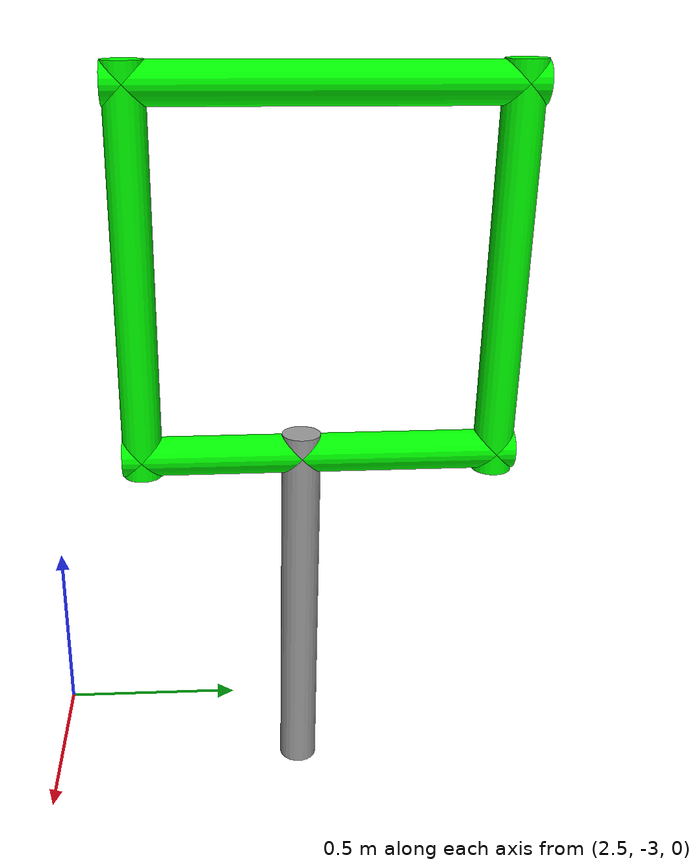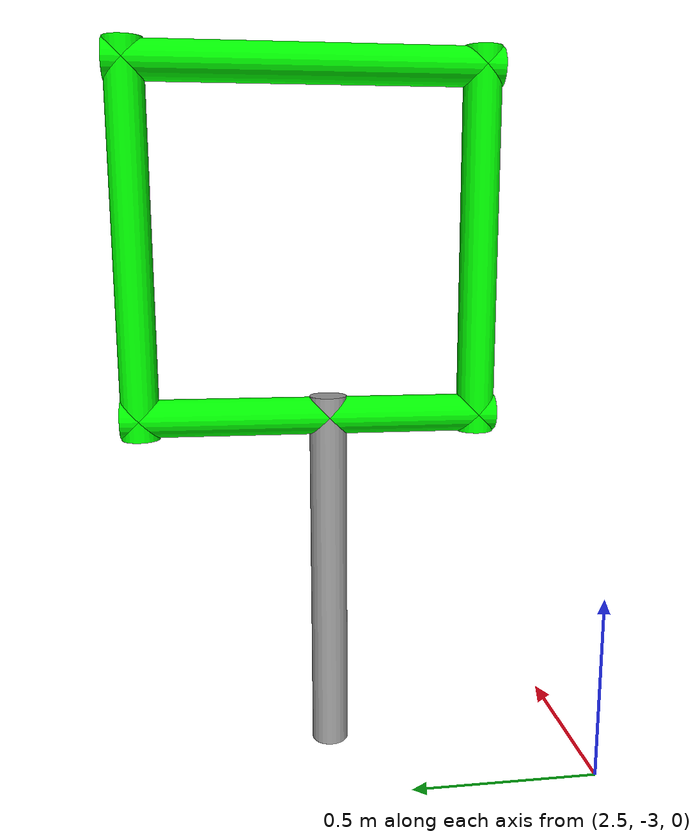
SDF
<?xml version='1.0'?>
<sdf version='1.7'>
  <model name='Gate_90'>
    <model name='Gate_1'>
      <link name='link_0'>
        <inertial>
          <mass>1</mass>
          <inertia>
            <ixx>0.145833</ixx>
            <ixy>0</ixy>
            <ixz>0</ixz>
            <iyy>0.145833</iyy>
            <iyz>0</iyz>
            <izz>0.125</izz>
          </inertia>
          <pose>0 0 0 0 -0 0</pose>
        </inertial>
        <pose>2.7998 -2.3165 0.500001 0 -0 0</pose>
        <gravity>1</gravity>
        <self_collide>0</self_collide>
        <kinematic>0</kinematic>
        <enable_wind>0</enable_wind>
        <visual name='visual'>
          <pose>0 0 0 0 -0 0</pose>
          <geometry>
            <cylinder>
              <radius>0.05</radius>
              <length>1</length>
            </cylinder>
          </geometry>
          <material>
            <lighting>1</lighting>
            <script>
              <uri>file://media/materials/scripts/gazebo.material</uri>
              <name>Gazebo/Grey</name>
            </script>
            <shader type='pixel'>
              <normal_map>__default__</normal_map>
            </shader>
            <ambient>0.3 0.3 0.3 1</ambient>
            <diffuse>0.7 0.7 0.7 1</diffuse>
            <specular>0.01 0.01 0.01 1</specular>
            <emissive>0 0 0 1</emissive>
          </material>
          <transparency>0</transparency>
          <cast_shadows>1</cast_shadows>
        </visual>
        <collision name='collision'>
          <laser_retro>0</laser_retro>
          <max_contacts>10</max_contacts>
          <pose>0 0 0 0 -0 0</pose>
          <geometry>
            <cylinder>
              <radius>0.05</radius>
              <length>1</length>
            </cylinder>
          </geometry>
          <surface>
            <friction>
              <ode>
                <mu>1</mu>
                <mu2>1</mu2>
                <fdir1>0 0 0</fdir1>
                <slip1>0</slip1>
                <slip2>0</slip2>
              </ode>
              <torsional>
                <coefficient>1</coefficient>
                <patch_radius>0</patch_radius>
                <surface_radius>0</surface_radius>
                <use_patch_radius>1</use_patch_radius>
                <ode>
                  <slip>0</slip>
                </ode>
              </torsional>
            </friction>
            <bounce>
              <restitution_coefficient>0</restitution_coefficient>
              <threshold>1e+06</threshold>
            </bounce>
            <contact>
              <collide_without_contact>0</collide_without_contact>
              <collide_without_contact_bitmask>1</collide_without_contact_bitmask>
              <collide_bitmask>1</collide_bitmask>
              <ode>
                <soft_cfm>0</soft_cfm>
                <soft_erp>0.2</soft_erp>
                <kp>1e+13</kp>
                <kd>1</kd>
                <max_vel>0.01</max_vel>
                <min_depth>0</min_depth>
              </ode>
              <bullet>
                <split_impulse>1</split_impulse>
                <split_impulse_penetration_threshold>-0.01</split_impulse_penetration_threshold>
                <soft_cfm>0</soft_cfm>
                <soft_erp>0.2</soft_erp>
                <kp>1e+13</kp>
                <kd>1</kd>
              </bullet>
            </contact>
          </surface>
        </collision>
      </link>
      <link name='link_0_clone_0'>
        <inertial>
          <mass>1</mass>
          <inertia>
            <ixx>0.145833</ixx>
            <ixy>0</ixy>
            <ixz>0</ixz>
            <iyy>0.145833</iyy>
            <iyz>0</iyz>
            <izz>0.125</izz>
          </inertia>
          <pose>0 0 0 0 -0 0</pose>
        </inertial>
        <pose>2.7998 -1.82126 1.39505 0 -0 0</pose>
        <gravity>1</gravity>
        <self_collide>0</self_collide>
        <kinematic>0</kinematic>
        <enable_wind>0</enable_wind>
        <visual name='visual'>
          <pose>0 0 0 0 -0 0</pose>
          <geometry>
            <cylinder>
              <radius>0.05</radius>
              <length>1</length>
            </cylinder>
          </geometry>
          <material>
            <lighting>1</lighting>
            <script>
              <uri>file://media/materials/scripts/gazebo.material</uri>
              <name>Gazebo/Grey</name>
            </script>
            <shader type='pixel'>
              <normal_map>__default__</normal_map>
            </shader>
            <ambient>0 1 0 0</ambient>
            <diffuse>0 1 0 0</diffuse>
            <specular>0 1 0 0</specular>
            <emissive>0 0 0 1</emissive>
          </material>
          <transparency>0</transparency>
          <cast_shadows>1</cast_shadows>
        </visual>
        <collision name='collision'>
          <laser_retro>0</laser_retro>
          <max_contacts>10</max_contacts>
          <pose>0 0 0 0 -0 0</pose>
          <geometry>
            <cylinder>
              <radius>0.05</radius>
              <length>1</length>
            </cylinder>
          </geometry>
          <surface>
            <friction>
              <ode>
                <mu>1</mu>
                <mu2>1</mu2>
                <fdir1>0 0 0</fdir1>
                <slip1>0</slip1>
                <slip2>0</slip2>
              </ode>
              <torsional>
                <coefficient>1</coefficient>
                <patch_radius>0</patch_radius>
                <surface_radius>0</surface_radius>
                <use_patch_radius>1</use_patch_radius>
                <ode>
                  <slip>0</slip>
                </ode>
              </torsional>
            </friction>
            <bounce>
              <restitution_coefficient>0</restitution_coefficient>
              <threshold>1e+06</threshold>
            </bounce>
            <contact>
              <collide_without_contact>0</collide_without_contact>
              <collide_without_contact_bitmask>1</collide_without_contact_bitmask>
              <collide_bitmask>1</collide_bitmask>
              <ode>
                <soft_cfm>0</soft_cfm>
                <soft_erp>0.2</soft_erp>
                <kp>1e+13</kp>
                <kd>1</kd>
                <max_vel>0.01</max_vel>
                <min_depth>0</min_depth>
              </ode>
              <bullet>
                <split_impulse>1</split_impulse>
                <split_impulse_penetration_threshold>-0.01</split_impulse_penetration_threshold>
                <soft_cfm>0</soft_cfm>
                <soft_erp>0.2</soft_erp>
                <kp>1e+13</kp>
                <kd>1</kd>
              </bullet>
            </contact>
          </surface>
        </collision>
      </link>
      <link name='link_0_clone_0_clone'>
        <inertial>
          <mass>1</mass>
          <inertia>
            <ixx>0.145833</ixx>
            <ixy>0</ixy>
            <ixz>0</ixz>
            <iyy>0.145833</iyy>
            <iyz>0</iyz>
            <izz>0.125</izz>
          </inertia>
          <pose>0 0 0 0 -0 0</pose>
        </inertial>
        <pose>2.7998 -2.27164 1.84407 1.56884 -0 0</pose>
        <gravity>1</gravity>
        <self_collide>0</self_collide>
        <kinematic>0</kinematic>
        <enable_wind>0</enable_wind>
        <visual name='visual'>
          <pose>0 0 0 0 -0 0</pose>
          <geometry>
            <cylinder>
              <radius>0.05</radius>
              <length>1</length>
            </cylinder>
          </geometry>
          <material>
            <lighting>1</lighting>
            <script>
              <uri>file://media/materials/scripts/gazebo.material</uri>
              <name>Gazebo/Grey</name>
            </script>
            <shader type='pixel'>
              <normal_map>__default__</normal_map>
            </shader>
            <ambient>0 1 0 0</ambient>
            <diffuse>0 1 0 0</diffuse>
            <specular>0 1 0 0</specular>
            <emissive>0 0 0 1</emissive>
          </material>
          <transparency>0</transparency>
          <cast_shadows>1</cast_shadows>
        </visual>
        <collision name='collision'>
          <laser_retro>0</laser_retro>
          <max_contacts>10</max_contacts>
          <pose>0 0 0 0 -0 0</pose>
          <geometry>
            <cylinder>
              <radius>0.05</radius>
              <length>1</length>
            </cylinder>
          </geometry>
          <surface>
            <friction>
              <ode>
                <mu>1</mu>
                <mu2>1</mu2>
                <fdir1>0 0 0</fdir1>
                <slip1>0</slip1>
                <slip2>0</slip2>
              </ode>
              <torsional>
                <coefficient>1</coefficient>
                <patch_radius>0</patch_radius>
                <surface_radius>0</surface_radius>
                <use_patch_radius>1</use_patch_radius>
                <ode>
                  <slip>0</slip>
                </ode>
              </torsional>
            </friction>
            <bounce>
              <restitution_coefficient>0</restitution_coefficient>
              <threshold>1e+06</threshold>
            </bounce>
            <contact>
              <collide_without_contact>0</collide_without_contact>
              <collide_without_contact_bitmask>1</collide_without_contact_bitmask>
              <collide_bitmask>1</collide_bitmask>
              <ode>
                <soft_cfm>0</soft_cfm>
                <soft_erp>0.2</soft_erp>
                <kp>1e+13</kp>
                <kd>1</kd>
                <max_vel>0.01</max_vel>
                <min_depth>0</min_depth>
              </ode>
              <bullet>
                <split_impulse>1</split_impulse>
                <split_impulse_penetration_threshold>-0.01</split_impulse_penetration_threshold>
                <soft_cfm>0</soft_cfm>
                <soft_erp>0.2</soft_erp>
                <kp>1e+13</kp>
                <kd>1</kd>
              </bullet>
            </contact>
          </surface>
        </collision>
      </link>
      <link name='link_0_clone_0_clone_0'>
        <inertial>
          <mass>1</mass>
          <inertia>
            <ixx>0.145833</ixx>
            <ixy>0</ixy>
            <ixz>0</ixz>
            <iyy>0.145833</iyy>
            <iyz>0</iyz>
            <izz>0.125</izz>
          </inertia>
          <pose>0 0 0 0 -0 0</pose>
        </inertial>
        <pose>2.7998 -2.72174 1.39505 0 -0 0</pose>
        <gravity>1</gravity>
        <self_collide>0</self_collide>
        <kinematic>0</kinematic>
        <enable_wind>0</enable_wind>
        <visual name='visual'>
          <pose>0 0 0 0 -0 0</pose>
          <geometry>
            <cylinder>
              <radius>0.05</radius>
              <length>1</length>
            </cylinder>
          </geometry>
          <material>
            <lighting>1</lighting>
            <script>
              <uri>file://media/materials/scripts/gazebo.material</uri>
              <name>Gazebo/Grey</name>
            </script>
            <shader type='pixel'>
              <normal_map>__default__</normal_map>
            </shader>
            <ambient>0 1 0 0</ambient>
            <diffuse>0 1 0 0</diffuse>
            <specular>0 1 0 0</specular>
            <emissive>0 0 0 1</emissive>
          </material>
          <transparency>0</transparency>
          <cast_shadows>1</cast_shadows>
        </visual>
        <collision name='collision'>
          <laser_retro>0</laser_retro>
          <max_contacts>10</max_contacts>
          <pose>0 0 0 0 -0 0</pose>
          <geometry>
            <cylinder>
              <radius>0.05</radius>
              <length>1</length>
            </cylinder>
          </geometry>
          <surface>
            <friction>
              <ode>
                <mu>1</mu>
                <mu2>1</mu2>
                <fdir1>0 0 0</fdir1>
                <slip1>0</slip1>
                <slip2>0</slip2>
              </ode>
              <torsional>
                <coefficient>1</coefficient>
                <patch_radius>0</patch_radius>
                <surface_radius>0</surface_radius>
                <use_patch_radius>1</use_patch_radius>
                <ode>
                  <slip>0</slip>
                </ode>
              </torsional>
            </friction>
            <bounce>
              <restitution_coefficient>0</restitution_coefficient>
              <threshold>1e+06</threshold>
            </bounce>
            <contact>
              <collide_without_contact>0</collide_without_contact>
              <collide_without_contact_bitmask>1</collide_without_contact_bitmask>
              <collide_bitmask>1</collide_bitmask>
              <ode>
                <soft_cfm>0</soft_cfm>
                <soft_erp>0.2</soft_erp>
                <kp>1e+13</kp>
                <kd>1</kd>
                <max_vel>0.01</max_vel>
                <min_depth>0</min_depth>
              </ode>
              <bullet>
                <split_impulse>1</split_impulse>
                <split_impulse_penetration_threshold>-0.01</split_impulse_penetration_threshold>
                <soft_cfm>0</soft_cfm>
                <soft_erp>0.2</soft_erp>
                <kp>1e+13</kp>
                <kd>1</kd>
              </bullet>
            </contact>
          </surface>
        </collision>
      </link>
      <link name='link_0_clone_0_clone_1'>
        <inertial>
          <mass>1</mass>
          <inertia>
            <ixx>0.145833</ixx>
            <ixy>0</ixy>
            <ixz>0</ixz>
            <iyy>0.145833</iyy>
            <iyz>0</iyz>
            <izz>0.125</izz>
          </inertia>
          <pose>0 0 0 0 -0 0</pose>
        </inertial>
        <pose>2.7998 -2.2715 0.947525 1.57575 -0 0</pose>
        <gravity>1</gravity>
        <self_collide>0</self_collide>
        <kinematic>0</kinematic>
        <enable_wind>0</enable_wind>
        <visual name='visual'>
          <pose>0 0 0 0 -0 0</pose>
          <geometry>
            <cylinder>
              <radius>0.05</radius>
              <length>1</length>
            </cylinder>
          </geometry>
          <material>
            <lighting>1</lighting>
            <script>
              <uri>file://media/materials/scripts/gazebo.material</uri>
              <name>Gazebo/Grey</name>
            </script>
            <shader type='pixel'>
              <normal_map>__default__</normal_map>
            </shader>
            <ambient>0 1 0 0</ambient>
            <diffuse>0 1 0 0</diffuse>
            <specular>0 1 0 0</specular>
            <emissive>0 0 0 1</emissive>
          </material>
          <transparency>0</transparency>
          <cast_shadows>1</cast_shadows>
        </visual>
        <collision name='collision'>
          <laser_retro>0</laser_retro>
          <max_contacts>10</max_contacts>
          <pose>0 0 0 0 -0 0</pose>
          <geometry>
            <cylinder>
              <radius>0.05</radius>
              <length>1</length>
            </cylinder>
          </geometry>
          <surface>
            <friction>
              <ode>
                <mu>1</mu>
                <mu2>1</mu2>
                <fdir1>0 0 0</fdir1>
                <slip1>0</slip1>
                <slip2>0</slip2>
              </ode>
              <torsional>
                <coefficient>1</coefficient>
                <patch_radius>0</patch_radius>
                <surface_radius>0</surface_radius>
                <use_patch_radius>1</use_patch_radius>
                <ode>
                  <slip>0</slip>
                </ode>
              </torsional>
            </friction>
            <bounce>
              <restitution_coefficient>0</restitution_coefficient>
              <threshold>1e+06</threshold>
            </bounce>
            <contact>
              <collide_without_contact>0</collide_without_contact>
              <collide_without_contact_bitmask>1</collide_without_contact_bitmask>
              <collide_bitmask>1</collide_bitmask>
              <ode>
                <soft_cfm>0</soft_cfm>
                <soft_erp>0.2</soft_erp>
                <kp>1e+13</kp>
                <kd>1</kd>
                <max_vel>0.01</max_vel>
                <min_depth>0</min_depth>
              </ode>
              <bullet>
                <split_impulse>1</split_impulse>
                <split_impulse_penetration_threshold>-0.01</split_impulse_penetration_threshold>
                <soft_cfm>0</soft_cfm>
                <soft_erp>0.2</soft_erp>
                <kp>1e+13</kp>
                <kd>1</kd>
              </bullet>
            </contact>
          </surface>
        </collision>
      </link>
      <joint name='link_0_JOINT_0' type='fixed'>
        <parent>link_0</parent>
        <child>link_0_clone_0_clone_1</child>
        <pose>0 0 0 0 -0 0</pose>
        <physics>
          <ode>
            <limit>
              <cfm>0</cfm>
              <erp>0.2</erp>
            </limit>
            <suspension>
              <cfm>0</cfm>
              <erp>0.2</erp>
            </suspension>
          </ode>
        </physics>
      </joint>
      <joint name='link_0_clone_0_clone_0_JOINT_4' type='fixed'>
        <parent>link_0_clone_0_clone_0</parent>
        <child>link_0_clone_0_clone</child>
        <pose>0 0 0 0 -0 0</pose>
        <physics>
          <ode>
            <limit>
              <cfm>0</cfm>
              <erp>0.2</erp>
            </limit>
            <suspension>
              <cfm>0</cfm>
              <erp>0.2</erp>
            </suspension>
          </ode>
        </physics>
      </joint>
      <joint name='link_0_clone_0_clone_1_JOINT_2' type='fixed'>
        <parent>link_0_clone_0_clone_1</parent>
        <child>link_0_clone_0_clone_0</child>
        <pose>0 0 0 0 -0 0</pose>
        <physics>
          <ode>
            <limit>
              <cfm>0</cfm>
              <erp>0.2</erp>
            </limit>
            <suspension>
              <cfm>0</cfm>
              <erp>0.2</erp>
            </suspension>
          </ode>
        </physics>
      </joint>
      <joint name='link_0_clone_0_clone_1_JOINT_5' type='fixed'>
        <parent>link_0_clone_0_clone_1</parent>
        <child>link_0_clone_0</child>
        <pose>0 0 0 0 -0 0</pose>
        <physics>
          <ode>
            <limit>
              <cfm>0</cfm>
              <erp>0.2</erp>
            </limit>
            <suspension>
              <cfm>0</cfm>
              <erp>0.2</erp>
            </suspension>
          </ode>
        </physics>
      </joint>
      <static>0</static>
      <allow_auto_disable>1</allow_auto_disable>
      <pose>-5e-06 -4e-06 0 0 -0 0</pose>
    </model>
    <static>0</static>
    <allow_auto_disable>1</allow_auto_disable>
  </model>
</sdf>
